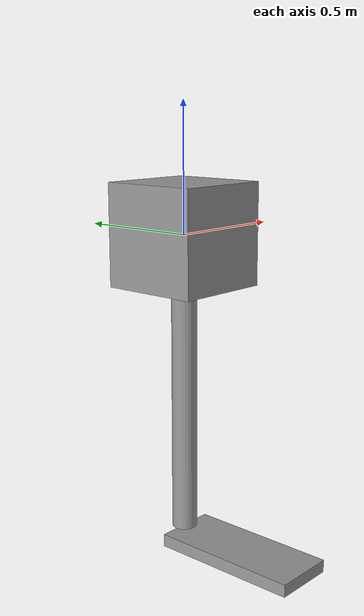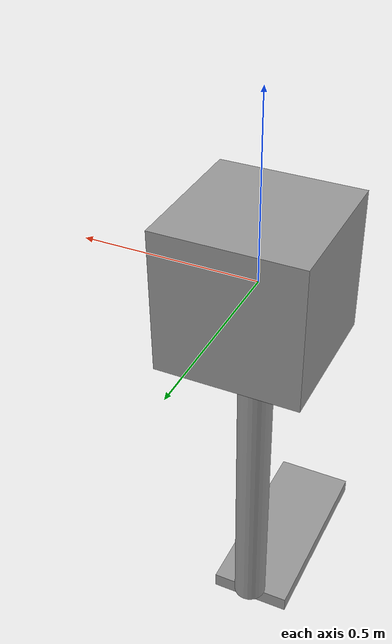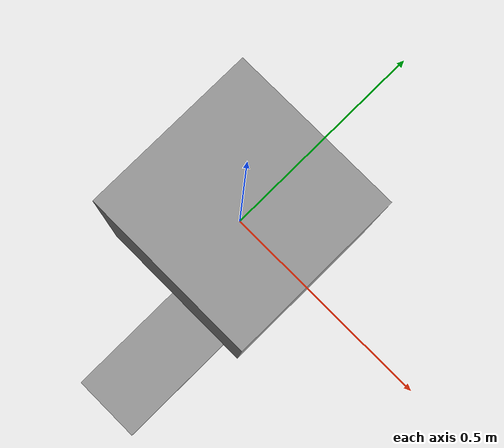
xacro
<?xml version="1.0"?>
<!-- Author: Peter Jochem
     Email: peterjochem2020@u.northwestern.edu
     Date: 09/29/2020   -->
<robot name="hopping_robot" xmlns:xacro="http://ros.org/wiki/xacro">

	<xacro:property name="torso_width" value="0.4" />
        <xacro:property name="torso_height" value="0.4" />
        <xacro:property name="torso_depth" value="0.4" />
        <xacro:property name="torso_mass" value="1.0" />

	<xacro:property name="leg_length" value="1.0" />
	<xacro:property name="leg_radius" value="0.05"/>
	<xacro:property name="leg_mass" value="1.0" />

	<xacro:property name="foot_width" value="0.25" />
        <xacro:property name="foot_height" value="0.60" />
        <xacro:property name="foot_depth" value="0.05" />
	<xacro:property name="foot_mass" value="1.0" />

	<link name="torso">
		<visual>
			<geometry>
				<box size="${torso_width} ${torso_height} ${torso_depth}" />
			</geometry>

			<material name="gray">
				<!-- color rgba="255 0 0 0.75" / -->
			</material>
			<origin rpy="0 0 0" xyz="0.0 0.0 0.0"/>
		</visual>

		<inertial>
      			<origin rpy="0 0 0" xyz="0.0 0.0 0.0"/>
			<mass value = "1.0"/>

			<!-- Fix the inertia tag-->
			<inertia ixx="${(1.0/12.0) * torso_mass * ( (torso_height * torso_height) + (torso_depth * torso_depth) ) }"
                                 iyy="${(1.0/12.0) * torso_mass * ( (torso_width * torso_width) + (torso_depth * torso_depth) ) }"
                                 izz="${(1.0/12.0) * torso_mass * ( (torso_width * torso_width) + (torso_height * torso_height) ) }"/>
    		</inertial>

		<collision>
      			<origin rpy="0 0 0" xyz="0.0 0.0 0.0"/>
    	  		<geometry>
        			<box size="${torso_width} ${torso_height} ${torso_depth}" />
     			</geometry>
		</collision>
        </link>

	<link name="leg">

		 <visual>
                        <geometry>
				 <cylinder length="${leg_length}" radius="${leg_radius}"/>
                        </geometry>

                        <material name="gray">
                                <!-- color rgba="0 0 255 0.4" / -->
                        </material>
			<origin rpy="0 0 0" xyz="0 0 0"/>
                </visual>

                <inertial>
			<origin rpy="0 0 0" xyz="0 0 0"/>
                        <mass value = "1.0"/>

			<inertia ixx="${ (1.0/12.0) * leg_mass * leg_length * leg_length}"
				 iyy="${ (1.0/12.0) * leg_mass * leg_length * leg_length}"
				 izz="${ (1.0/12.0) * leg_mass * leg_length * leg_length}" />
                </inertial>

                <collision>
			<origin rpy="0 0 0" xyz="0 0 0"/>
                        <geometry>
                        	<cylinder length="${leg_length}" radius="${leg_radius}"/>
                        </geometry>
                </collision>
	</link>

	<link name="foot">
		<visual>
                        <geometry>
				<box size="${foot_width} ${foot_height} ${foot_depth}" />
                        </geometry>

                        <material name="gray">
                                <!-- color rgba="0 255 0 0.5" / -->
                        </material>
			<origin rpy="0 0 0" xyz="0.0 ${-foot_height/2} 0.0"/>
                </visual>

                <inertial>
			<origin rpy="0 0 0" xyz="0.0 ${-foot_height/2} 0.0"/>
                        <mass value = "1.0"/>

                        <!-- Fix the inertia tag-->
                        <inertia ixx="${(1.0/12.0) * foot_mass * ( (foot_height * foot_height) + (foot_depth * foot_depth) ) }"
                                 iyy="${(1.0/12.0) * foot_mass * ( (foot_width * foot_width) + (foot_depth * foot_depth) ) }"
                                 izz="${(1.0/12.0) * foot_mass * ( (foot_width * foot_width) + (foot_height * foot_height) ) }"/>
                </inertial>

                <collision>
			<origin rpy="0 0 0" xyz="0.0 ${-foot_height/2} 0.0"/>
                        <geometry>
                                <box size="${foot_width} ${foot_height} ${foot_depth}" />
                        </geometry>
                </collision>
        </link>

	<joint name="torso_leg" type="fixed">
		<parent link="torso"/>
                <child link="leg"/>
		<origin rpy="0 0 0" xyz="0.0 0.0 ${-leg_length/2 - torso_depth/2}"/>
		<axis xyz="0 0 0"/>

	</joint>

	<joint name="leg_foot" type="revolute">
		<origin xyz="0.0 0.0 ${-leg_length/2 - foot_depth/2}" rpy="0 0 0" />
	  	<axis xyz = "1 0 0" />
	  	<parent link="leg" />
		<child link="foot" />

		<!-- What to set these to? -->
	  	<limit velocity="1.0" effort="10" lower="0.0" upper="1.57"/>
  	</joint>

	 <transmission name="leg_foot_trans" type="transmission_interface/SimpleTransmission">
                <joint name="leg_foot_trans" />

                <actuator name="leg_foot_trans"/>

                <!-- What to set these to? -->
                <motorInertia>0.0000049</motorInertia>
                <mechanicalReduction>50</mechanicalReduction>
        </transmission>

</robot>
